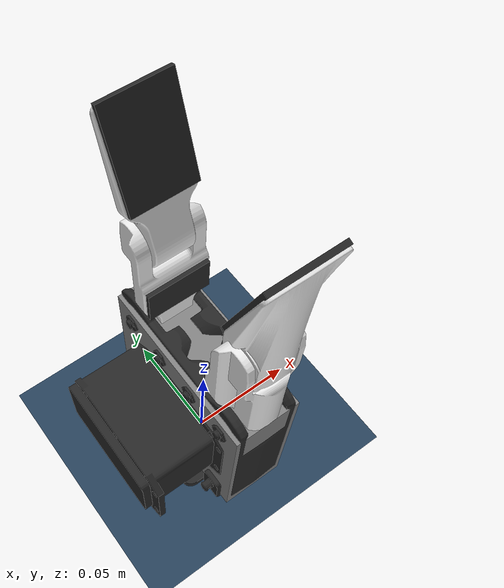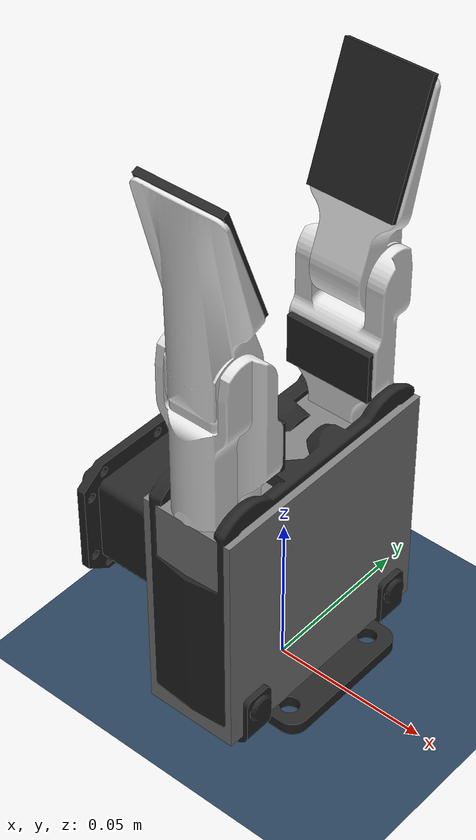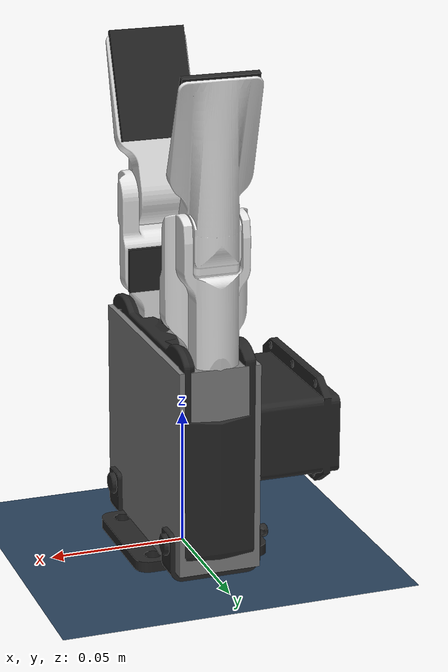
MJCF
<mujoco model="gripper scene">
  <include file="sake_ezgripper.xml"/>

  <statistic center="0 0 0.6" extent="2.0"/>
  <!--two geoms will collide if the following expression is true-->
  <!--(contype1 & conaffinity2) || (contype2 & conaffinity1)-->
  <default>
      <default class="world_visual">
          <geom condim="1" contype="0" conaffinity="0" group="0"/>
      </default>
      <default class="world_collision">
          <geom contype="3" conaffinity="2" condim="6" group="2" friction="0.5 0.005 0.0001"/>
      </default>
  </default>

  <visual>
    <headlight diffuse="0.6 0.6 0.6" ambient="0.3 0.3 0.3" specular="0 0 0"/>
    <rgba haze="0.15 0.25 0.35 1"/>
    <global azimuth="160" elevation="-20"/>
  </visual>

  <asset>
    <texture type="skybox" builtin="gradient" rgb1="0.3 0.5 0.7" rgb2="0 0 0" width="512" height="3072"/>
    <texture type="2d" name="groundplane" builtin="checker" mark="edge" rgb1="0.2 0.3 0.4" rgb2="0.1 0.2 0.3"
      markrgb="0.8 0.8 0.8" width="300" height="300"/>
    <material name="groundplane" texture="groundplane" texuniform="true" texrepeat="5 5" reflectance="0.2"/>
  </asset>

  <worldbody>
    <light pos="0 0 3.5" dir="0 0 -1" directional="true"/>
    <geom name="floor" size="0 0 0.05" type="plane" material="groundplane" class="world_collision"/>
  </worldbody>

</mujoco>

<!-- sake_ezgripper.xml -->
<mujoco model="sake_ezgripper">
  <compiler angle="radian" autolimits="true" eulerseq="zyx" meshdir="mujoco_meshes/"/>
  <option gravity="0 0 -9.81" timestep="0.00125" solver="Newton" tolerance="1e-12" impratio="60.0" iterations="10"/>
  <default>
      <geom contype="1" conaffinity="2" condim="6" margin="0.0005" solref="0.005 1" group="1"/>
      <equality solref="0.0002 1" solimp="0.99 0.999 0.00001"/>
      <joint limited="true"/>
      <light castshadow="true" diffuse="0.8 0.8 0.8"/>
  </default>

  <actuator>
      <motor ctrllimited="true" ctrlrange="-20 20" joint="joint_left_driver" gear="1" name="torque_drive"/>
  </actuator>

  <asset>
    <material name="metal" rgba="0.58 0.58 0.58 1"/>
    <material name="black" rgba="0.149 0.149 0.149 1"/>
    <material name="gray" rgba="0.4627 0.4627 0.4627 1"/>
    <material name="white" rgba="0.9 0.9 0.9 1"/>
    <material name="silicone" rgba="0.1882 0.1882 0.1882 1"/>

    <material name="tendon_line" rgba="0.95 0.3 0.3 0"/>
    <material name="tendon_site" rgba="0.1882 0.1882 0.1882 0"/>

    <mesh name="mesh_finger1" file="meshes/ezgripper_gen2/SAKE_Finger_L1_Gen2.stl"/>
    <mesh name="mesh_finger2" file="meshes/ezgripper_gen2/SAKE_Finger_L2_Gen2.stl"/>
    <mesh name="mesh_palm_dual" file="meshes/ezgripper_gen2/SAKE_Palm_Dual_Gen2.stl"/>
  </asset>

  <worldbody>
    <body name="base">
      <geom name="geom_base_viz"
        type="mesh" mesh="mesh_palm_dual"
        quat="0 0.7071068 0 0.7071068"
        group="1"
        material="black"
        />
      <geom name="geom_base_col"
        type="box" pos="0 0 0.042" size="0.015 0.04 0.038"
        group="0"
        />
      <inertial
        mass="0.3" diaginertia="0.01 0.01 0.01"
        pos="0 0 0"
        />
      <site name="site_left_finger1" pos="0 0.03 0" size="0.01" material="tendon_site"/>
      <site name="site_left_finger2" pos="0 0.03 0.062569" size="0.01" material="tendon_site"/>
      <site name="site_right_finger1" pos="0 -0.03 0" size="0.01" material="tendon_site"/>
      <site name="site_right_finger2" pos="0 -0.03 0.062569" size="0.01" material="tendon_site"/>

    <body name="left_finger1" pos="0 0.03 0.072569" quat="-0.5 0.5 0.5 0.5">
      <joint name="joint_left_driver"
        axis="0 1 0"
        limited="true" range="-1.94 1.94"
        solimplimit="0.95 0.99 0.001" solreflimit="0.005 1"
        />
      <geom name="geom_left_finger1"
        type="mesh" mesh="mesh_finger1"
        group="1"
        material="white"
        />
      <geom name="geom_left_finger1_pad"
        type="box" pos="0.027 0 -0.012" size="0.008 0.014 0.001"
        group="1"
        material="black"
        />
      <geom name="geom_left_finger1_pad_col"
        type="box" pos="0.027 0 -0.012" size="0.008 0.014 0.001"
        group="0"
        />
      <inertial
        mass=".025" diaginertia="0.01 0.01 0.01"
        pos="0 0 0"
        />
      <site name="site_left_finger3" pos="0.042 0 0.01" size="0.01" material="tendon_site"/>

    <body name="left_finger2" pos="0.052 0 0">
      <joint name="joint_left_coupler"
        axis="0 1 0"
        limited="true" range="0 1.94"
        solimplimit="0.95 0.99 0.001" solreflimit="0.005 1"
        stiffness="0.4" springref="0.0" frictionloss="0.1"
        />
      <geom name="geom_left_finger2"
        type="mesh" mesh="mesh_finger2"
        group="1"
        material="white"
        />
      <geom name="geom_left_finger2_pad"
        type="box" pos="0.040 0 0.002" quat="0.9838437 0 -0.1790296 0" size="0.02 0.014 0.001"
        group="1"
        material="black"
        />
      <geom name="geom_left_finger2_pad_col"
        type="box" pos="0.040 0 0.002" quat="0.9838437 0 -0.1790296 0" size="0.02 0.014 0.001"
        group="0"
        />
      <inertial
        mass=".025" diaginertia="0.01 0.01 0.01"
        pos="0 0 0"
        />
      <site name="site_left_finger4" pos="0.05 0 0.01" size="0.01" material="tendon_site"/>

    </body>
    </body>

    <body name="right_finger1" pos="0 -0.03 0.072569" quat="0.5 0.5 -0.5 0.5">
      <joint name="joint_right_driver"
        axis="0 1 0"
        limited="true" range="-1.94 1.94"
        solimplimit="0.95 0.99 0.001" solreflimit="0.005 1"
        />
      <geom name="geom_right_finger1"
        type="mesh" mesh="mesh_finger1"
        group="1"
        material="white"
        />
      <geom name="geom_right_finger1_pad"
        type="box" pos="0.027 0 -0.012" size="0.008 0.014 0.001"
        group="1"
        material="black"
        />
      <geom name="geom_right_finger1_pad_col"
        type="box" pos="0.027 0 -0.012" size="0.008 0.014 0.001"
        group="0"
        />
      <inertial
        mass=".025" diaginertia="0.01 0.01 0.01"
        pos="0 0 0"
        />
      <site name="site_right_finger3" pos="0.042 0 0.01" size="0.01" material="tendon_site"/>

    <body name="right_finger2" pos="0.052 0 0">
      <joint name="joint_right_coupler"
        axis="0 1 0"
        limited="true" range="0 1.94"
        solimplimit="0.95 0.99 0.001" solreflimit="0.005 1"
        stiffness="0.4" springref="0.0" frictionloss="0.1"
        />
      <geom name="geom_right_finger2"
        type="mesh" mesh="mesh_finger2"
        group="1"
        material="white"
        />
      <geom name="geom_right_finger2_pad"
        type="box" pos="0.040 0 0.002" quat="0.9838437 0 -0.1790296 0" size="0.02 0.014 0.001"
        group="1"
        material="black"
        />
      <geom name="geom_right_finger2_pad_col"
        type="box" pos="0.040 0 0.002" quat="0.9838437 0 -0.1790296 0" size="0.02 0.014 0.001"
        group="0"
        />
      <inertial
        mass=".025" diaginertia="0.01 0.01 0.01"
        pos="0 0 0"
        />
      <site name="site_right_finger4" pos="0.05 0 0.01" size="0.01" material="tendon_site"/>

    </body>
    </body>

    <body name="eef" pos="0 0 0.13" quat="1 0 0 0">
        <!-- This site was added for visualization. -->
    </body>

  </body>

  </worldbody>

  <equality>
    <tendon tendon1="tendon_left" tendon2="tendon_right" polycoef="0 1 0 0 0"
        solimp="0.95 0.99 0.001" solref="0.005 1"/>
    <joint joint1="joint_right_driver" joint2="joint_left_driver" polycoef="0 1 0 0 0"
        solimp="0.95 0.99 0.001" solref="0.005 1"/>
  </equality>

  <tendon>
    <spatial width="0.002" material="tendon_line" name="tendon_left"
      limited="true" range="0 0.5" springlength="0" frictionloss="0.1" stiffness="0.4">
      <site site="site_left_finger1"/>
      <site site="site_left_finger2"/>
      <site site="site_left_finger3"/>
      <site site="site_left_finger4"/>
    </spatial>

    <spatial width="0.002" material="tendon_line" name="tendon_right"
      limited="true" range="0 0.5" springlength="0" frictionloss="0.1" stiffness="0.4">
      <site site="site_right_finger1"/>
      <site site="site_right_finger2"/>
      <site site="site_right_finger3"/>
      <site site="site_right_finger4"/>
    </spatial>

  </tendon>

</mujoco>
